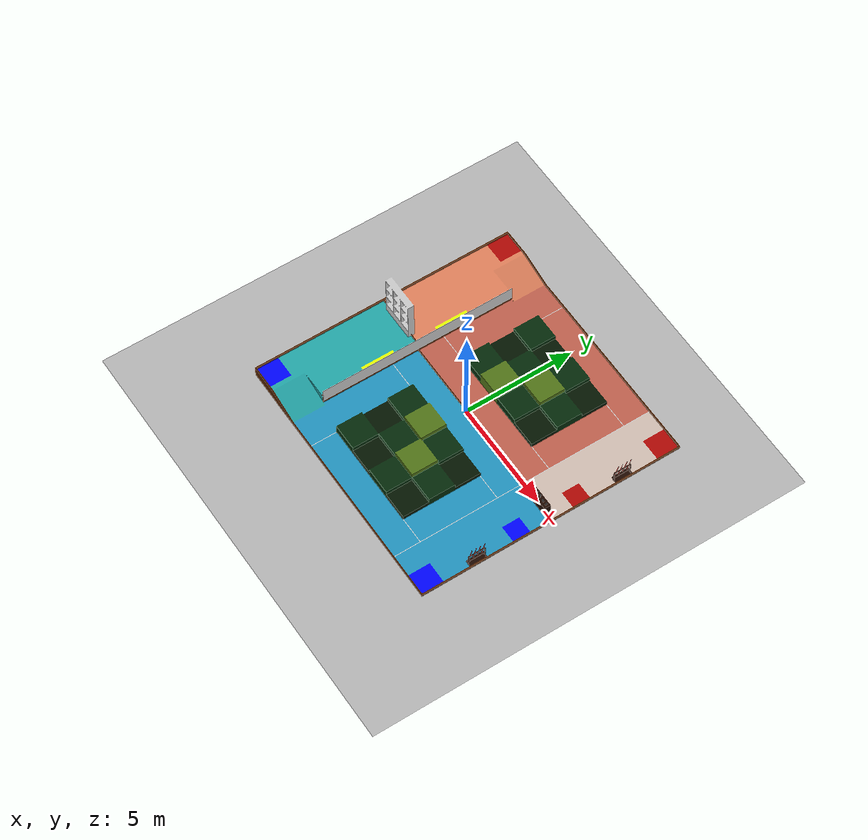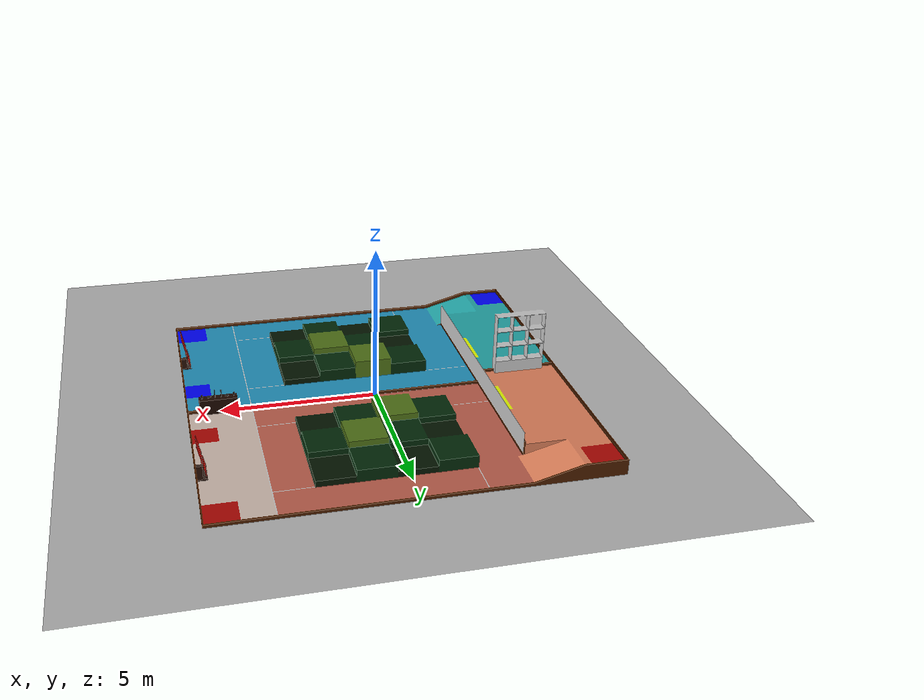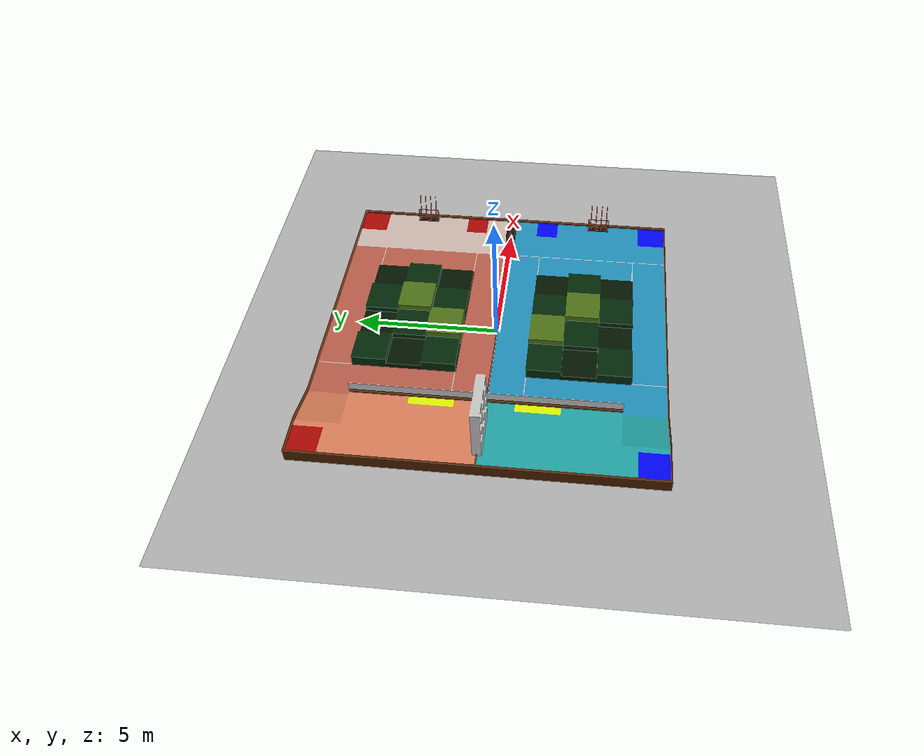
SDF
<sdf version='1.7'>
  <world name='robocon2026_world_scene'>
    <model name='ground_plane'>
      <static>1</static>
    </model>
    <light name='sun_main1' type='directional'>
      <pose>0 0 20 0 -0 0</pose>
      <diffuse>255 255 255 1</diffuse>
      <specular>0.3 0.3 0.3 1</specular>
      <direction>0.5 0.1 -1</direction>
      <cast_shadows>1</cast_shadows>
      <attenuation>
        <range>1000</range>
        <constant>0.01</constant>
        <linear>0.001</linear>
        <quadratic>0.00</quadratic>
      </attenuation>
    </light>
    <light name='sun_main2' type='directional'>
      <pose>0 0 20 0 -0 0</pose>
      <diffuse>255 255 255 1</diffuse>
      <specular>0.3 0.3 0.3 1</specular>
      <direction>0.5 0.1 -1</direction>
      <cast_shadows>1</cast_shadows>
      <attenuation>
        <range>1000</range>
        <constant>0.01</constant>
        <linear>0.001</linear>
        <quadratic>0.00</quadratic>
      </attenuation>
    </light>
    <light name='sun_main3' type='directional'>
      <pose>0 0 20 0 -0 0</pose>
      <diffuse>255 255 255 1</diffuse>
      <specular>0.3 0.3 0.3 1</specular>
      <direction>0.5 0.1 -1</direction>
      <cast_shadows>1</cast_shadows>
      <attenuation>
        <range>1000</range>
        <constant>0.01</constant>
        <linear>0.001</linear>
        <quadratic>0.00</quadratic>
      </attenuation>
    </light>
    <light name='sun_main4' type='directional'>
      <pose>0 0 20 0 -0 0</pose>
      <diffuse>255 255 255 1</diffuse>
      <specular>0.3 0.3 0.3 1</specular>
      <direction>0.5 0.1 -1</direction>
      <cast_shadows>1</cast_shadows>
      <attenuation>
        <range>1000</range>
        <constant>0.01</constant>
        <linear>0.001</linear>
        <quadratic>0.00</quadratic>
      </attenuation>
    </light>
    <scene>
      <ambient>0.2 0.2 0.2 1</ambient>
      <background>0.4 0.4 0.4 1</background>
      <shadows>1</shadows>
    </scene>
    <model name='robocon2026_field'>
      <static>1</static>
      <pose>0 0 0.01 0 -0 0</pose>
      <link name='arena_link'>
        <collision name='arena_collision'>
          <geometry>
            <mesh>
              <uri>model://robocon2026_world/meshes/robocon2026.dae</uri>
            </mesh>
          </geometry>
          <max_contacts>10</max_contacts>
          <surface>
            <contact>
              <ode/>
            </contact>
            <bounce/>
            <friction>
              <torsional>
                <ode/>
              </torsional>
              <ode/>
            </friction>
          </surface>
        </collision>
        <visual name='arena_visual'>
          <geometry>
            <mesh>
              <uri>model://robocon2026_world/meshes/robocon2026.dae</uri>
            </mesh>
          </geometry>
        </visual>
        <self_collide>0</self_collide>
        <enable_wind>0</enable_wind>
        <kinematic>0</kinematic>
      </link>
    </model>

  </world>

</sdf>
